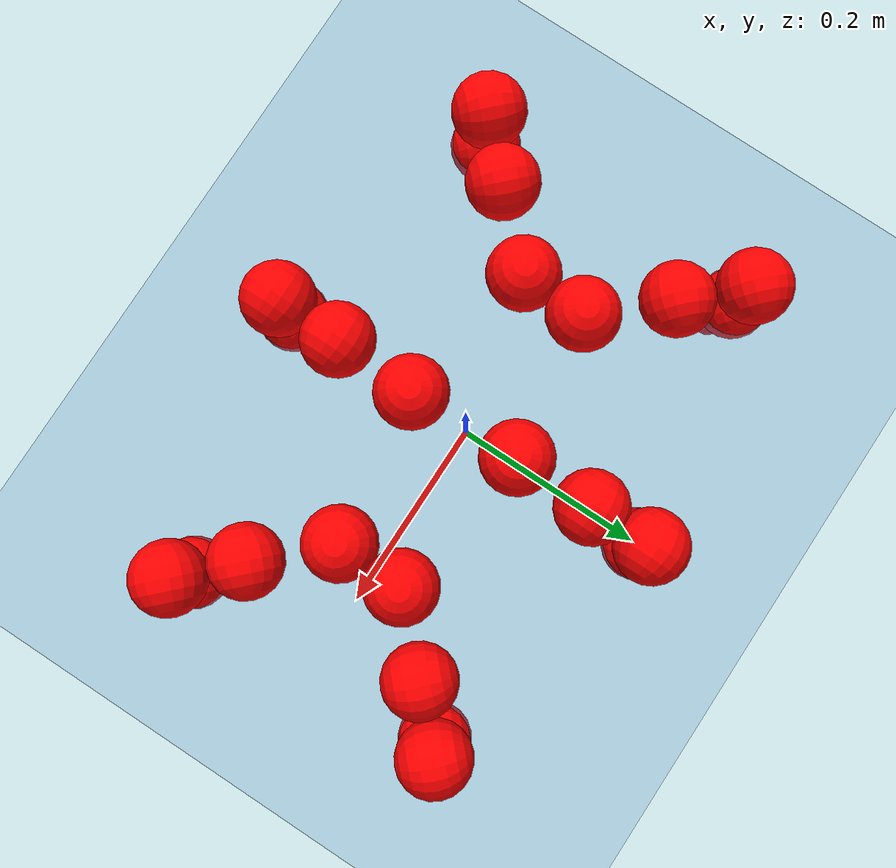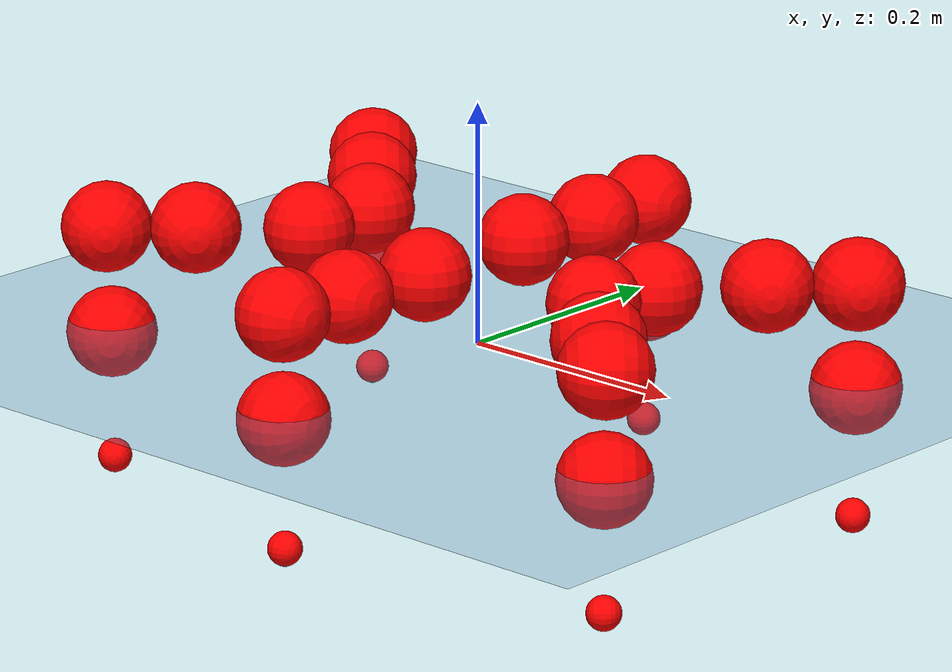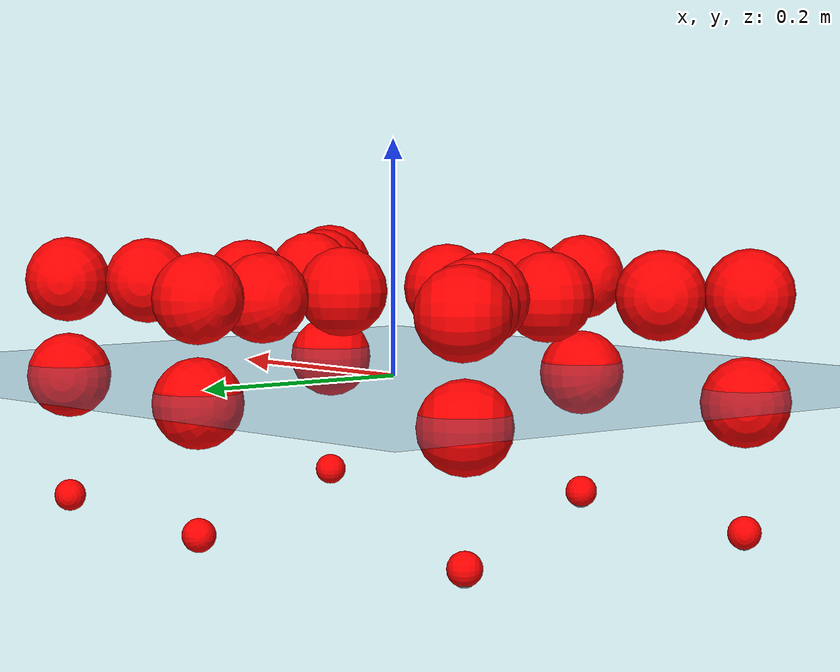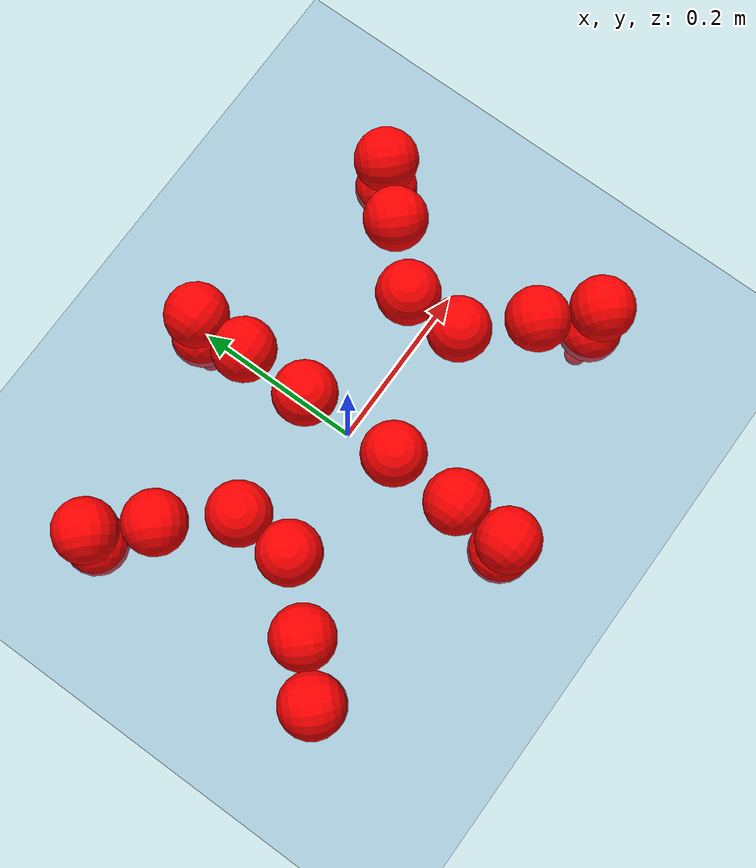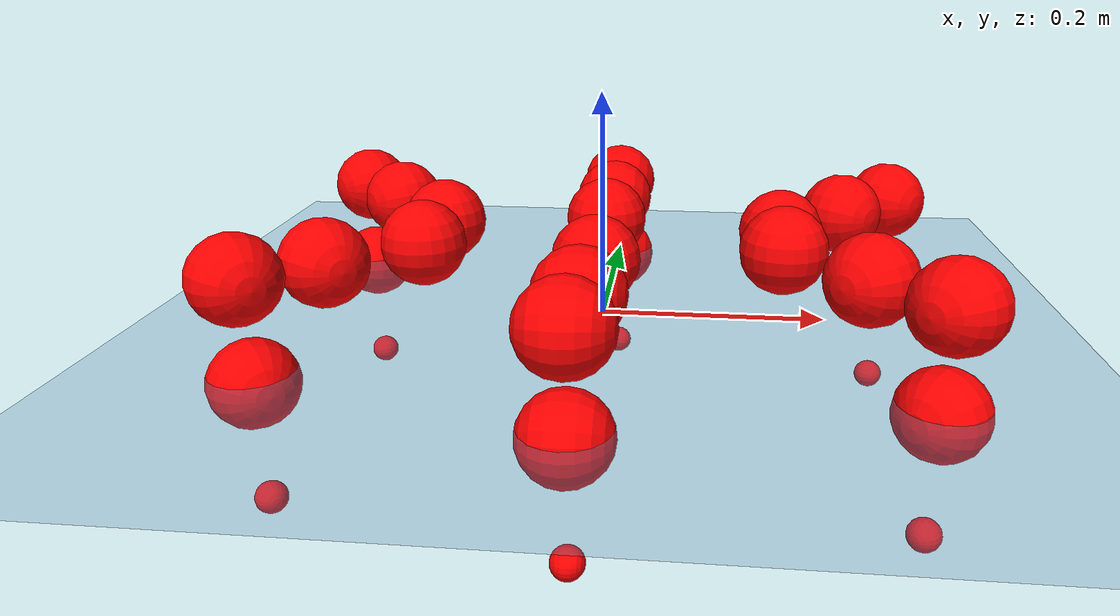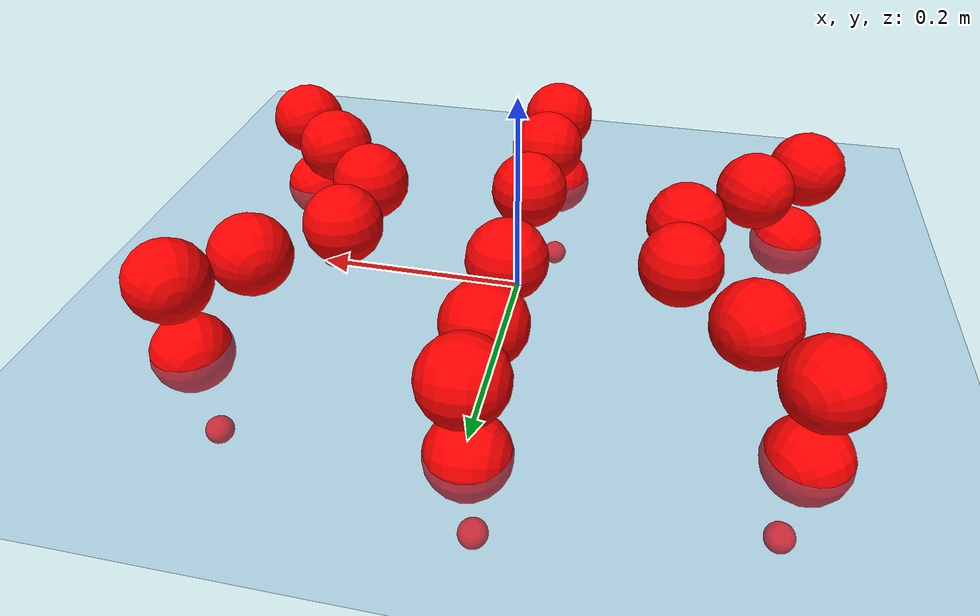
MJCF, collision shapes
<mujoco model="Golem">
  <compiler angle="radian" assetdir="assets" balanceinertia="true" inertiafromgeom="false"/>

  <option timestep="0.005" density="1.2" viscosity="2e-05"/>

  <size nkey="1"/>

  <visual>
    <quality shadowsize="8192"/>
    <map shadowclip="0.5"/>
  </visual>

  <default>
    <default class="/">
      <joint armature="0.01" damping="0.01" frictionloss="0.01"/>
      <geom contype="0" conaffinity="0" group="1" solref="-1000 -80"/>
      <site size="0.01 0.005 0.005" group="5"/>
      <general forcelimited="true" biastype="affine" gainprm="25" biasprm="0 -25 -0.5"/>
      <default class="visual">
        <geom type="mesh" group="2"/>
      </default>
      <default class="collision">
        <geom group="3"/>
      </default>
      <default class="foot">
        <geom size="0.01 0 0" condim="6" group="4" priority="1" solimp="0.015 1 0.01"/>
      </default>
      <default class="reward_collision_sphere">
        <geom group="5" rgba="1 0 0 1"/>
      </default>
    </default>
  </default>

  <asset>
    <texture type="skybox" colorspace="auto" name="//unnamed_texture_0" builtin="gradient" rgb1="0.95 0.95 0.95" rgb2="0.95 0.95 0.95" width="100" height="600"/>
    <texture type="2d" colorspace="auto" name="texplane" builtin="checker" rgb1="0.345 0.575 0.748" rgb2="0.345 0.575 0.748" markrgb="1 1 1" width="512" height="512"/>
    <material name="MatPlane" class="/" texture="texplane" texuniform="true" texrepeat="2 2" specular="0.9"/>
    <mesh name="body" class="/" file="body.stl" scale="0.001 0.001 0.001"/>
    <mesh name="coxa" class="/" file="coxa.stl" scale="0.001 0.001 0.001"/>
    <mesh name="femur" class="/" file="femur.stl" scale="0.001 0.001 0.001"/>
    <mesh name="tibia" class="/" file="tibia.stl" scale="0.001 0.001 0.001"/>
    <mesh name="tarsus" class="/" file="tarsus.stl" scale="0.001 0.001 0.001"/>
  </asset>

  <worldbody>
    <geom name="floor" class="/" size="100 100 0.125" type="plane" group="0" material="MatPlane"/>
    <light name="toplight_shadow" class="/" pos="0 0 5" dir="0.0990148 0.0990148 -0.990148" type="directional" ambient="0.04 0.04 0.04" diffuse="0.55 0.55 0.55" specular="0.12 0.12 0.12"/>
    <light name="toplight_fill" class="/" pos="0 0 5" dir="0.0990148 0.0990148 -0.990148" type="directional" castshadow="false" ambient="0.04 0.04 0.04" diffuse="0.3 0.3 0.3" specular="0.08 0.08 0.08"/>
    <body name="trunk" pos="0.00107556 -0.00104654 0.000632613" quat="1 0.000298807 -5.1735e-05 -6.42587e-05">
      <inertial pos="0.00311303 -0.000825979 -0.00168149" quat="0.999964 -0.00528035 -0.00242362 -0.00621415" mass="3.13842" diaginertia="0.0103621 0.00131123 0.0205954"/>
      <joint name="//unnamed_joint_0" type="free"/>
      <geom name="//unnamed_geom_1" class="/" pos="0 0 0.0730899" quat="1 0 0 0" type="mesh" rgba="0.9 0.9 0.9 1" mesh="body"/>
      <site name="imu" class="/" pos="0.126455 -0.00536374 0.100887" size="0.00933661"/>
      <camera name="track" class="/" pos="0 -1.32815 0" quat="0.707107 0.707107 0 0" mode="trackcom"/>
      <camera name="ego_camera" class="/" pos="0.129334 0 0.114203" quat="-0.5 -0.5 0.5 0.5"/>
      <body name="coxa_RR" pos="-0.176085 -0.0545131 0.0724501" quat="0.382684 0.000127795 4.19295e-06 -0.923879">
        <inertial pos="0.000290249 -0.00173328 0.000507237" quat="0.999999 0.000195958 0.000837307 0.00144917" mass="0.160713" diaginertia="0.00948728 0.00123737 0.0191742"/>
        <joint name="coxa_joint_RR" class="/" pos="0 0 0" axis="-0.00635627 -0.00426588 -0.999971" range="-3.18522 3.1339" armature="0.00899181" damping="0" frictionloss="0.00944223"/>
        <geom name="//unnamed_geom_2" class="/" type="mesh" rgba="0.2 0.2 0.2 1" mesh="coxa"/>
        <geom name="//unnamed_geom_3" class="reward_collision_sphere" size="0.0373464" pos="-0.0298464 0 0"/>
        <body name="femur_RR" pos="0.0621054 0.00109135 0.00159685" quat="0.499282 -0.50052 0.500137 0.50006">
          <inertial pos="-0.000672548 0.000365182 -0.00193371" quat="0.999998 0.0021079 0.000595611 -0.000367251" mass="0.159067" diaginertia="0.00971733 0.00125497 0.0191326"/>
          <joint name="femur_joint_RR" class="/" pos="0 0 0" axis="-0.013739 -0.00531819 -0.999891" stiffness="0.00232816" range="-3.14177 3.14068" armature="0.00933748" damping="0.00318156" frictionloss="0.0098324"/>
          <geom name="//unnamed_geom_4" class="/" type="mesh" rgba="0.9 0.9 0.9 1" mesh="femur"/>
          <geom name="//unnamed_geom_5" class="reward_collision_sphere" size="0.0373464"/>
          <body name="tibia_RR" pos="-0.00154894 -0.0719145 -0.001601" quat="3.73332e-05 1 5.90927e-05 -9.7704e-06">
            <inertial pos="0.000398922 -0.00244855 -0.000270988" quat="0.999921 -0.00218549 -0.0111422 -0.00537064" mass="0.162532" diaginertia="0.010042 0.00127927 0.0191449"/>
            <joint name="tibia_joint_RR" class="/" pos="0 0 0" axis="-0.0138678 0.000507074 0.999904" range="-3.09185 3.15094" armature="0.00919296" damping="0.0148532" frictionloss="0.00909694"/>
            <geom name="//unnamed_geom_6" class="/" type="mesh" rgba="0.2 0.2 0.2 1" mesh="tibia"/>
            <geom name="//unnamed_geom_7" class="reward_collision_sphere" size="0.0373464"/>
            <body name="tarsus_RR" pos="0.0886293 -0.00236209 -0.00224327" quat="1 0.000341323 0.000783447 -0.000271295">
              <inertial pos="0.0595848 -0.000101951 -0.00246631" quat="0.504165 0.488078 0.503403 0.504166" mass="0.168492" diaginertia="0.00990216 0.00132069 0.0188235"/>
              <joint name="tarsus_joint_RR" class="/" pos="0 0 0" axis="-0.00121685 -0.00191879 0.999997" range="-3.18669 3.1592" armature="0.00942235" damping="0" frictionloss="0.0106103"/>
              <geom name="//unnamed_geom_8" class="/" type="mesh" rgba="0.9 0.9 0.9 1" mesh="tarsus"/>
              <geom name="foot_1" class="foot" size="0.00988531" pos="0.111426 0 0" quat="0 -0.707107 0 0.707107"/>
              <geom name="//unnamed_geom_10" class="reward_collision_sphere" size="0.0373464"/>
              <geom name="//unnamed_geom_11" class="reward_collision_sphere" size="0.0140049" pos="0.106949 0 0"/>
              <site name="foot_1" class="foot" pos="0.111426 0 0" quat="0 -0.707107 0 0.707107" size="0.00933661"/>
            </body>
          </body>
        </body>
      </body>
      <body name="coxa_RM" pos="-0.000493989 -0.0906954 0.0715929" quat="0.706503 -0.000452294 -4.96516e-05 -0.70771">
        <inertial pos="0.00271712 0.000653873 -0.0024014" quat="1 -3.62144e-07 -1.24455e-06 6.15611e-05" mass="0.163645" diaginertia="0.00968767 0.00133668 0.0195161"/>
        <joint name="coxa_joint_RM" class="/" pos="0 0 0" axis="-0.0050026 -0.00184917 -0.999986" range="-3.1482 3.13476" armature="0.010609" damping="0.0143907" frictionloss="0.00952793"/>
        <geom name="//unnamed_geom_12" class="/" type="mesh" rgba="0.2 0.2 0.2 1" mesh="coxa"/>
        <geom name="//unnamed_geom_13" class="reward_collision_sphere" size="0.0373464" pos="-0.0298464 0 0"/>
        <body name="femur_RM" pos="0.0563954 -0.00314931 0.00154225" quat="0.500116 -0.499498 0.500495 0.499891">
          <inertial pos="0.00252026 -0.00233452 0.000444267" quat="1 0.000815129 -0.000354995 0.000184455" mass="0.15752" diaginertia="0.00909259 0.00124329 0.0181616"/>
          <joint name="femur_joint_RM" class="/" pos="0 0 0" axis="-0.0116643 0.00393349 -0.999924" stiffness="0.00290672" range="-3.13651 3.08499" armature="0.00911392" damping="0.0248314" frictionloss="0.00852761"/>
          <geom name="//unnamed_geom_14" class="/" type="mesh" rgba="0.9 0.9 0.9 1" mesh="femur"/>
          <geom name="//unnamed_geom_15" class="reward_collision_sphere" size="0.0373464"/>
          <body name="tibia_RM" pos="-0.00136205 -0.0693301 -0.0012294" quat="0.000506644 0.999999 -0.000886055 0.000308946">
            <inertial pos="-0.00219269 0.00231434 -0.000580678" quat="0.999948 -0.00395339 0.00923388 0.00199768" mass="0.156926" diaginertia="0.00951159 0.00126426 0.0189726"/>
            <joint name="tibia_joint_RM" class="/" pos="0 0 0" axis="0.00366541 0.00314604 0.999988" range="-3.13557 3.18373" armature="0.00940984" damping="0.020327" frictionloss="0.00922423"/>
            <geom name="//unnamed_geom_16" class="/" type="mesh" rgba="0.2 0.2 0.2 1" mesh="tibia"/>
            <geom name="//unnamed_geom_17" class="reward_collision_sphere" size="0.0373464"/>
            <body name="tarsus_RM" pos="0.0851978 -0.000500255 0.00072555" quat="1 4.73983e-06 3.50372e-05 -8.49332e-05">
              <inertial pos="0.0624934 0.000679364 8.47634e-05" quat="0.499547 0.500735 0.500204 0.499513" mass="0.16714" diaginertia="0.00973597 0.00128176 0.0199659"/>
              <joint name="tarsus_joint_RM" class="/" pos="0 0 0" axis="-0.00201368 0.0022728 0.999995" range="-3.19332 3.08304" armature="0.00940051" damping="0.0053729" frictionloss="0.00807958"/>
              <geom name="//unnamed_geom_18" class="/" type="mesh" rgba="0.9 0.9 0.9 1" mesh="tarsus"/>
              <geom name="foot_2" class="foot" size="0.010213" pos="0.111426 0 0" quat="0 -0.707107 0 0.707107"/>
              <geom name="//unnamed_geom_20" class="reward_collision_sphere" size="0.0373464"/>
              <geom name="//unnamed_geom_21" class="reward_collision_sphere" size="0.0140049" pos="0.106949 0 0"/>
              <site name="foot_2" class="foot" pos="0.111426 0 0" quat="0 -0.707107 0 0.707107" size="0.00933661"/>
            </body>
          </body>
        </body>
      </body>
      <body name="coxa_RF" pos="0.176884 -0.0583546 0.0764429" quat="0.92379 -0.000149941 0.000321084 -0.382899">
        <inertial pos="0.000912481 -0.002706 0.00285097" quat="0.999909 -0.00589072 0.00215568 -0.0119672" mass="0.152202" diaginertia="0.00937351 0.00125269 0.0188003"/>
        <joint name="coxa_joint_RF" class="/" pos="0 0 0" axis="-0.00773678 -0.00721831 -0.999944" range="-3.08686 3.16987" armature="0.00800261" damping="0" frictionloss="0.00912433"/>
        <geom name="//unnamed_geom_22" class="/" type="mesh" rgba="0.2 0.2 0.2 1" mesh="coxa"/>
        <geom name="//unnamed_geom_23" class="reward_collision_sphere" size="0.0373464" pos="-0.0298464 0 0"/>
        <body name="femur_RF" pos="0.0592171 -0.0016587 -0.00123483" quat="0.500164 -0.500069 0.499902 0.499865">
          <inertial pos="-0.00255881 0.00257169 5.38621e-05" quat="0.999999 0.000100048 0.00140933 0.000318958" mass="0.162108" diaginertia="0.00988844 0.00133988 0.0200446"/>
          <joint name="femur_joint_RF" class="/" pos="0 0 0" axis="-0.00337911 0.00184108 -0.999993" range="-3.12922 3.11061" armature="0.00923896" damping="0.00305327" frictionloss="0.00870124"/>
          <geom name="//unnamed_geom_24" class="/" type="mesh" rgba="0.9 0.9 0.9 1" mesh="femur"/>
          <geom name="//unnamed_geom_25" class="reward_collision_sphere" size="0.0373464"/>
          <body name="tibia_RF" pos="-0.000437972 -0.0735168 0.000706035" quat="-8.64192e-06 1 1.43513e-05 6.36028e-05">
            <inertial pos="-1.96146e-05 0.000236362 -0.00241106" quat="0.999903 0.000958042 0.00649686 0.0122634" mass="0.161738" diaginertia="0.00984685 0.00125048 0.0201392"/>
            <joint name="tibia_joint_RF" class="/" pos="0 0 0" axis="-0.000164499 -0.000367686 1" range="-3.14641 3.17288" armature="0.00956982" damping="0.00383452" frictionloss="0.0102044"/>
            <geom name="//unnamed_geom_26" class="/" type="mesh" rgba="0.2 0.2 0.2 1" mesh="tibia"/>
            <geom name="//unnamed_geom_27" class="reward_collision_sphere" size="0.0373464"/>
            <body name="tarsus_RF" pos="0.0867471 -0.00054069 0.000431462" quat="0.999999 0.000422869 0.00124645 -0.000129969">
              <inertial pos="0.0586905 -0.000833047 -0.000396056" quat="0.498927 0.501387 0.499268 0.500414" mass="0.166743" diaginertia="0.0100257 0.00127948 0.0193176"/>
              <joint name="tarsus_joint_RF" class="/" pos="0 0 0" axis="0.00940558 -0.00337415 0.99995" stiffness="0.0229542" range="-3.08625 3.13825" armature="0.00876614" damping="0" frictionloss="0.00885235"/>
              <geom name="//unnamed_geom_28" class="/" type="mesh" rgba="0.9 0.9 0.9 1" mesh="tarsus"/>
              <geom name="foot_3" class="foot" size="0.00926458" pos="0.111426 0 0" quat="0 -0.707107 0 0.707107"/>
              <geom name="//unnamed_geom_30" class="reward_collision_sphere" size="0.0373464"/>
              <geom name="//unnamed_geom_31" class="reward_collision_sphere" size="0.0140049" pos="0.106949 0 0"/>
              <site name="foot_3" class="foot" pos="0.111426 0 0" quat="0 -0.707107 0 0.707107" size="0.00933661"/>
            </body>
          </body>
        </body>
      </body>
      <body name="coxa_LR" pos="-0.174047 0.056763 0.073787" quat="0.382677 -6.69743e-06 2.47464e-05 0.923882">
        <inertial pos="-0.00237254 -0.00304212 0.00128222" quat="0.999911 0.00396455 0.00880377 0.00921918" mass="0.155412" diaginertia="0.00969712 0.00120919 0.0182553"/>
        <joint name="coxa_joint_LR" class="/" pos="0 0 0" axis="-0.000318943 0.000145342 -1" stiffness="0.0055348" range="-3.17604 3.16325" armature="0.00974776" damping="0.014585" frictionloss="0.00926509"/>
        <geom name="//unnamed_geom_32" class="/" type="mesh" rgba="0.2 0.2 0.2 1" mesh="coxa"/>
        <geom name="//unnamed_geom_33" class="reward_collision_sphere" size="0.0373464" pos="-0.0298464 0 0"/>
        <body name="femur_LR" pos="0.0612982 -0.00431195 0.0007233" quat="0.499968 -0.499913 0.500124 0.499994">
          <inertial pos="-0.000871915 -0.00216332 -0.00119044" quat="1 -3.69778e-05 8.28757e-05 0.000159547" mass="0.161532" diaginertia="0.00942677 0.00133016 0.0188258"/>
          <joint name="femur_joint_LR" class="/" pos="0 0 0" axis="-0.000491407 0.000495301 1" range="-3.08531 3.14736" armature="0.00975464" damping="0.0045704" frictionloss="0.00938123"/>
          <geom name="//unnamed_geom_34" class="/" type="mesh" rgba="0.9 0.9 0.9 1" mesh="femur"/>
          <geom name="//unnamed_geom_35" class="reward_collision_sphere" size="0.0373464"/>
          <body name="tibia_LR" pos="0.000338847 -0.0754903 -0.00283979" quat="0.000347565 1 -0.000589738 0.000620086">
            <inertial pos="0.00186279 -0.0026889 -0.00107892" quat="0.999903 0.00943785 -0.00208542 0.0100044" mass="0.159011" diaginertia="0.00931306 0.00124544 0.0192143"/>
            <joint name="tibia_joint_LR" class="/" pos="0 0 0" axis="0.00405217 0.00208871 -0.99999" range="-3.10419 3.19361" armature="0.00930285" damping="0" frictionloss="0.00931743"/>
            <geom name="//unnamed_geom_36" class="/" type="mesh" rgba="0.2 0.2 0.2 1" mesh="tibia"/>
            <geom name="//unnamed_geom_37" class="reward_collision_sphere" size="0.0373464"/>
            <body name="tarsus_LR" pos="0.0860401 0.0011648 -0.00184795" quat="0.999999 -0.000353205 -0.000414688 0.00112868">
              <inertial pos="0.0611036 -0.0022835 -0.00257104" quat="0.502772 0.497441 0.500315 0.499457" mass="0.164047" diaginertia="0.00988431 0.00127009 0.0188308"/>
              <joint name="tarsus_joint_LR" class="/" pos="0 0 0" axis="0.00770568 0.0129436 -0.999887" range="-3.1586 3.09746" armature="0.00818706" damping="0" frictionloss="0.0083841"/>
              <geom name="//unnamed_geom_38" class="/" type="mesh" rgba="0.9 0.9 0.9 1" mesh="tarsus"/>
              <geom name="foot_4" class="foot" size="0.010159" pos="0.111426 0 0" quat="0.707107 0 -0.707107 0"/>
              <geom name="//unnamed_geom_40" class="reward_collision_sphere" size="0.0373464"/>
              <geom name="//unnamed_geom_41" class="reward_collision_sphere" size="0.0140049" pos="0.106949 0 0"/>
              <site name="foot_4" class="foot" pos="0.111426 0 0" quat="0.707107 0 -0.707107 0" size="0.00933661"/>
            </body>
          </body>
        </body>
      </body>
      <body name="coxa_LM" pos="-0.00300367 0.0876099 0.0730973" quat="0.707081 0.000138534 2.1449e-05 0.707132">
        <inertial pos="0.000392179 -0.00258678 0.00089309" quat="0.999903 -0.00425086 -0.00309428 -0.0128603" mass="0.16192" diaginertia="0.0100301 0.00132781 0.0199332"/>
        <joint name="coxa_joint_LM" class="/" pos="0 0 0" axis="-0.00736063 0.00814855 -0.99994" range="-3.13105 3.12356" armature="0.00929483" damping="0.014667" frictionloss="0.0103258"/>
        <geom name="//unnamed_geom_42" class="/" type="mesh" rgba="0.2 0.2 0.2 1" mesh="coxa"/>
        <geom name="//unnamed_geom_43" class="reward_collision_sphere" size="0.0373464" pos="-0.0298464 0 0"/>
        <body name="femur_LM" pos="0.0545423 -0.000502244 -0.0016665" quat="0.499901 -0.50025 0.499999 0.49985">
          <inertial pos="0.00247224 0.000785429 0.000442846" quat="0.999911 0.000773166 -0.0126885 0.00396896" mass="0.170227" diaginertia="0.00972945 0.00137718 0.0201118"/>
          <joint name="femur_joint_LM" class="/" pos="0 0 0" axis="0.00309387 0.00170146 0.999994" range="-3.14619 3.12683" armature="0.0099805" damping="0.0105437" frictionloss="0.00818481"/>
          <geom name="//unnamed_geom_44" class="/" type="mesh" rgba="0.9 0.9 0.9 1" mesh="femur"/>
          <geom name="//unnamed_geom_45" class="reward_collision_sphere" size="0.0373464"/>
          <body name="tibia_LM" pos="-0.00231372 -0.0661009 -0.00035255" quat="0.000953812 0.999999 0.000207917 0.000810065">
            <inertial pos="0.00217398 0.000146612 -0.00280021" quat="0.999905 0.0126498 0.00506382 0.00184899" mass="0.165277" diaginertia="0.00986152 0.00134838 0.0197975"/>
            <joint name="tibia_joint_LM" class="/" pos="0 0 0" axis="-0.0027485 0.0102609 -0.999944" range="-3.14134 3.14133" armature="0.00931872" damping="0.0021347" frictionloss="0.00805163"/>
            <geom name="//unnamed_geom_46" class="/" type="mesh" rgba="0.2 0.2 0.2 1" mesh="tibia"/>
            <geom name="//unnamed_geom_47" class="reward_collision_sphere" size="0.0373464"/>
            <body name="tarsus_LM" pos="0.0845582 0.000623506 -0.000521642" quat="0.999999 0.000588848 0.00032998 -0.00102061">
              <inertial pos="0.0598253 0.000289246 0.00181151" quat="0.510442 0.497511 0.491516 0.500343" mass="0.170148" diaginertia="0.0101257 0.00129564 0.0196276"/>
              <joint name="tarsus_joint_LM" class="/" pos="0 0 0" axis="-0.00306146 -0.0101946 -0.999943" stiffness="0.00848883" range="-3.15349 3.14853" armature="0.00949543" damping="0" frictionloss="0.0106235"/>
              <geom name="//unnamed_geom_48" class="/" type="mesh" rgba="0.9 0.9 0.9 1" mesh="tarsus"/>
              <geom name="foot_5" class="foot" size="0.00949424" pos="0.111426 0 0" quat="0.707107 0 -0.707107 0"/>
              <geom name="//unnamed_geom_50" class="reward_collision_sphere" size="0.0373464"/>
              <geom name="//unnamed_geom_51" class="reward_collision_sphere" size="0.0140049" pos="0.106949 0 0"/>
              <site name="foot_5" class="foot" pos="0.111426 0 0" quat="0.707107 0 -0.707107 0" size="0.00933661"/>
            </body>
          </body>
        </body>
      </body>
      <body name="coxa_LF" pos="0.179492 0.054262 0.071985" quat="0.923916 -0.000378978 -0.000149898 0.382594">
        <inertial pos="0.000470526 -0.000160191 0.00289914" quat="0.999913 0.000150428 -0.0118032 0.00585881" mass="0.158086" diaginertia="0.00940141 0.00133376 0.0188355"/>
        <joint name="coxa_joint_LF" class="/" pos="0 0 0" axis="-0.00136212 -0.0168434 -0.999857" range="-3.11762 3.14558" armature="0.00797163" damping="0.000317949" frictionloss="0.0103575"/>
        <geom name="//unnamed_geom_52" class="/" type="mesh" rgba="0.2 0.2 0.2 1" mesh="coxa"/>
        <geom name="//unnamed_geom_53" class="reward_collision_sphere" size="0.0373464" pos="-0.0298464 0 0"/>
        <body name="femur_LF" pos="0.0582075 -0.000118045 0.00105568" quat="0.499863 -0.499842 0.500247 0.500048">
          <inertial pos="-0.00236068 -0.00104932 0.00212365" quat="0.999997 -5.25468e-05 0.00243438 0.000185852" mass="0.160269" diaginertia="0.0100867 0.00127707 0.0194554"/>
          <joint name="femur_joint_LF" class="/" pos="0 0 0" axis="-5.2796e-05 -0.000308328 1" range="-3.13655 3.14182" armature="0.0103248" damping="0.00703143" frictionloss="0.0090076"/>
          <geom name="//unnamed_geom_54" class="/" type="mesh" rgba="0.9 0.9 0.9 1" mesh="femur"/>
          <geom name="//unnamed_geom_55" class="reward_collision_sphere" size="0.0373464"/>
          <body name="tibia_LF" pos="-0.000775069 -0.0714037 -0.000836292" quat="0.000521629 0.999999 -0.000106835 -0.000851802">
            <inertial pos="-0.000894629 -0.00203465 0.00135491" quat="1 -2.80603e-05 0.000445547 -0.000612551" mass="0.159754" diaginertia="0.00919749 0.00126104 0.0189418"/>
            <joint name="tibia_joint_LF" class="/" pos="0 0 0" axis="0.000595117 -0.000651174 -1" range="-3.1501 3.1196" armature="0.0106162" damping="0" frictionloss="0.00956789"/>
            <geom name="//unnamed_geom_56" class="/" type="mesh" rgba="0.2 0.2 0.2 1" mesh="tibia"/>
            <geom name="//unnamed_geom_57" class="reward_collision_sphere" size="0.0373464"/>
            <body name="tarsus_LF" pos="0.0849545 -0.000497097 0.0019364" quat="1 0.000315998 0.000351158 -2.4273e-05">
              <inertial pos="0.0590908 0.00246636 0.00103876" quat="0.499482 0.509279 0.49678 0.49433" mass="0.15276" diaginertia="0.00953145 0.00121107 0.0190953"/>
              <joint name="tarsus_joint_LF" class="/" pos="0 0 0" axis="-0.0058393 -0.000704762 -0.999983" range="-3.15694 3.14448" armature="0.0107374" damping="0.00649615" frictionloss="0.00820309"/>
              <geom name="//unnamed_geom_58" class="/" type="mesh" rgba="0.9 0.9 0.9 1" mesh="tarsus"/>
              <geom name="foot_6" class="foot" size="0.00942065" pos="0.111426 0 0" quat="0.707107 0 -0.707107 0"/>
              <geom name="//unnamed_geom_60" class="reward_collision_sphere" size="0.0373464"/>
              <geom name="//unnamed_geom_61" class="reward_collision_sphere" size="0.0140049" pos="0.106949 0 0"/>
              <site name="foot_6" class="foot" pos="0.111426 0 0" quat="0.707107 0 -0.707107 0" size="0.00933661"/>
            </body>
          </body>
        </body>
      </body>
    </body>
  </worldbody>

  <contact>
    <pair class="/" geom1="floor" geom2="foot_1" name="//unnamed_contact_0"/>
    <pair class="/" geom1="floor" geom2="foot_2" name="//unnamed_contact_1"/>
    <pair class="/" geom1="floor" geom2="foot_3" name="//unnamed_contact_2"/>
    <pair class="/" geom1="floor" geom2="foot_4" name="//unnamed_contact_3"/>
    <pair class="/" geom1="floor" geom2="foot_5" name="//unnamed_contact_4"/>
    <pair class="/" geom1="floor" geom2="foot_6" name="//unnamed_contact_5"/>
  </contact>

  <actuator>
    <general name="coxa_joint_RR" class="/" joint="coxa_joint_RR" forcerange="-6.74076 6.74076" gainprm="23.9623" biasprm="0 -23.9623 -0.482448"/>
    <general name="femur_joint_RR" class="/" joint="femur_joint_RR" forcerange="-7.0055 7.0055" gainprm="23.9623" biasprm="0 -23.9623 -0.482448"/>
    <general name="tibia_joint_RR" class="/" joint="tibia_joint_RR" forcerange="-6.89264 6.89264" gainprm="23.9623" biasprm="0 -23.9623 -0.482448"/>
    <general name="tarsus_joint_RR" class="/" joint="tarsus_joint_RR" forcerange="-7.52659 7.52659" gainprm="23.9623" biasprm="0 -23.9623 -0.482448"/>
    <general name="coxa_joint_RM" class="/" joint="coxa_joint_RM" forcerange="-6.60773 6.60773" gainprm="23.9623" biasprm="0 -23.9623 -0.482448"/>
    <general name="femur_joint_RM" class="/" joint="femur_joint_RM" forcerange="-6.8254 6.8254" gainprm="23.9623" biasprm="0 -23.9623 -0.482448"/>
    <general name="tibia_joint_RM" class="/" joint="tibia_joint_RM" forcerange="-6.86796 6.86796" gainprm="23.9623" biasprm="0 -23.9623 -0.482448"/>
    <general name="tarsus_joint_RM" class="/" joint="tarsus_joint_RM" forcerange="-7.46549 7.46549" gainprm="23.9623" biasprm="0 -23.9623 -0.482448"/>
    <general name="coxa_joint_RF" class="/" joint="coxa_joint_RF" forcerange="-7.25684 7.25684" gainprm="23.9623" biasprm="0 -23.9623 -0.482448"/>
    <general name="femur_joint_RF" class="/" joint="femur_joint_RF" forcerange="-6.13771 6.13771" gainprm="23.9623" biasprm="0 -23.9623 -0.482448"/>
    <general name="tibia_joint_RF" class="/" joint="tibia_joint_RF" forcerange="-7.40083 7.40083" gainprm="23.9623" biasprm="0 -23.9623 -0.482448"/>
    <general name="tarsus_joint_RF" class="/" joint="tarsus_joint_RF" forcerange="-6.18438 6.18438" gainprm="23.9623" biasprm="0 -23.9623 -0.482448"/>
    <general name="coxa_joint_LR" class="/" joint="coxa_joint_LR" forcerange="-6.29644 6.29644" gainprm="23.9623" biasprm="0 -23.9623 -0.482448"/>
    <general name="femur_joint_LR" class="/" joint="femur_joint_LR" forcerange="-6.88909 6.88909" gainprm="23.9623" biasprm="0 -23.9623 -0.482448"/>
    <general name="tibia_joint_LR" class="/" joint="tibia_joint_LR" forcerange="-6.86757 6.86757" gainprm="23.9623" biasprm="0 -23.9623 -0.482448"/>
    <general name="tarsus_joint_LR" class="/" joint="tarsus_joint_LR" forcerange="-6.2896 6.2896" gainprm="23.9623" biasprm="0 -23.9623 -0.482448"/>
    <general name="coxa_joint_LM" class="/" joint="coxa_joint_LM" forcerange="-7.08538 7.08538" gainprm="23.9623" biasprm="0 -23.9623 -0.482448"/>
    <general name="femur_joint_LM" class="/" joint="femur_joint_LM" forcerange="-6.23443 6.23443" gainprm="23.9623" biasprm="0 -23.9623 -0.482448"/>
    <general name="tibia_joint_LM" class="/" joint="tibia_joint_LM" forcerange="-6.67872 6.67872" gainprm="23.9623" biasprm="0 -23.9623 -0.482448"/>
    <general name="tarsus_joint_LM" class="/" joint="tarsus_joint_LM" forcerange="-7.06271 7.06271" gainprm="23.9623" biasprm="0 -23.9623 -0.482448"/>
    <general name="coxa_joint_LF" class="/" joint="coxa_joint_LF" forcerange="-6.10478 6.10478" gainprm="23.9623" biasprm="0 -23.9623 -0.482448"/>
    <general name="femur_joint_LF" class="/" joint="femur_joint_LF" forcerange="-6.2919 6.2919" gainprm="23.9623" biasprm="0 -23.9623 -0.482448"/>
    <general name="tibia_joint_LF" class="/" joint="tibia_joint_LF" forcerange="-7.33102 7.33102" gainprm="23.9623" biasprm="0 -23.9623 -0.482448"/>
    <general name="tarsus_joint_LF" class="/" joint="tarsus_joint_LF" forcerange="-6.74045 6.74045" gainprm="23.9623" biasprm="0 -23.9623 -0.482448"/>
  </actuator>

  <sensor>
    <gyro site="imu" name="imu_angular_velocity"/>
    <velocimeter site="imu" name="imu_linear_velocity"/>
    <framelinvel objtype="site" objname="foot_1" name="foot_1_global_linear_velocity"/>
    <framelinvel objtype="site" objname="foot_2" name="foot_2_global_linear_velocity"/>
    <framelinvel objtype="site" objname="foot_3" name="foot_3_global_linear_velocity"/>
    <framelinvel objtype="site" objname="foot_4" name="foot_4_global_linear_velocity"/>
    <framelinvel objtype="site" objname="foot_5" name="foot_5_global_linear_velocity"/>
    <framelinvel objtype="site" objname="foot_6" name="foot_6_global_linear_velocity"/>
  </sensor>

  <keyframe>
    <key name="home" qpos="0 0 0.1457 1 0 0 0 0 0 0 0 0 0 0 0 0 0 0 0 0 0 0 0 0 0 0 0 0 0 0 0"/>
  </keyframe>
</mujoco>
